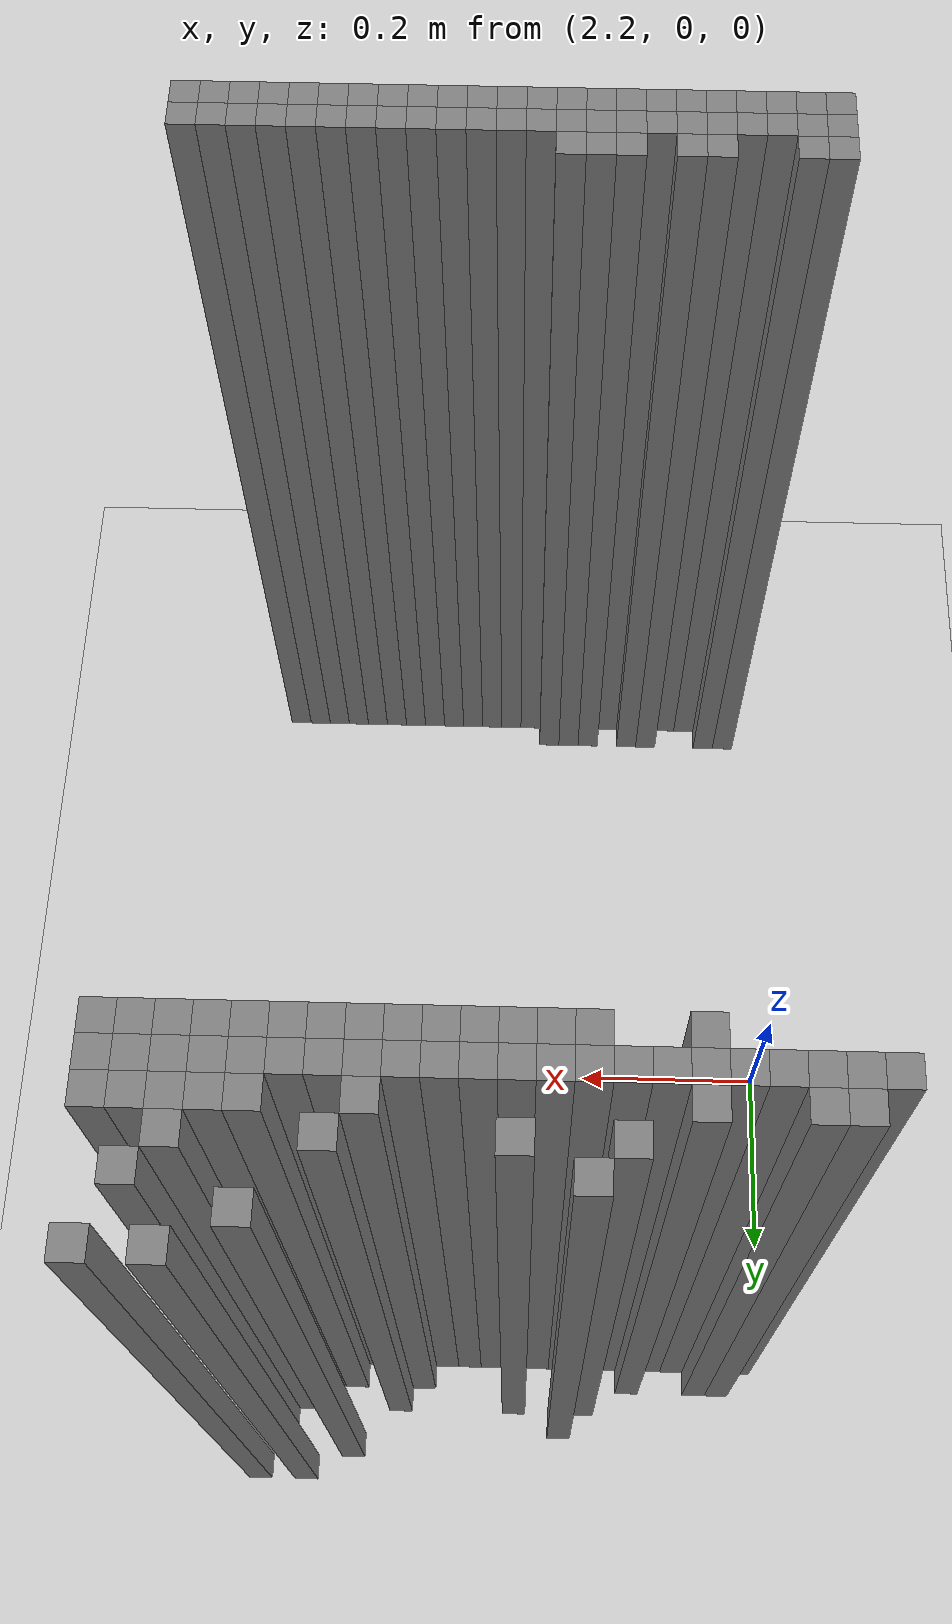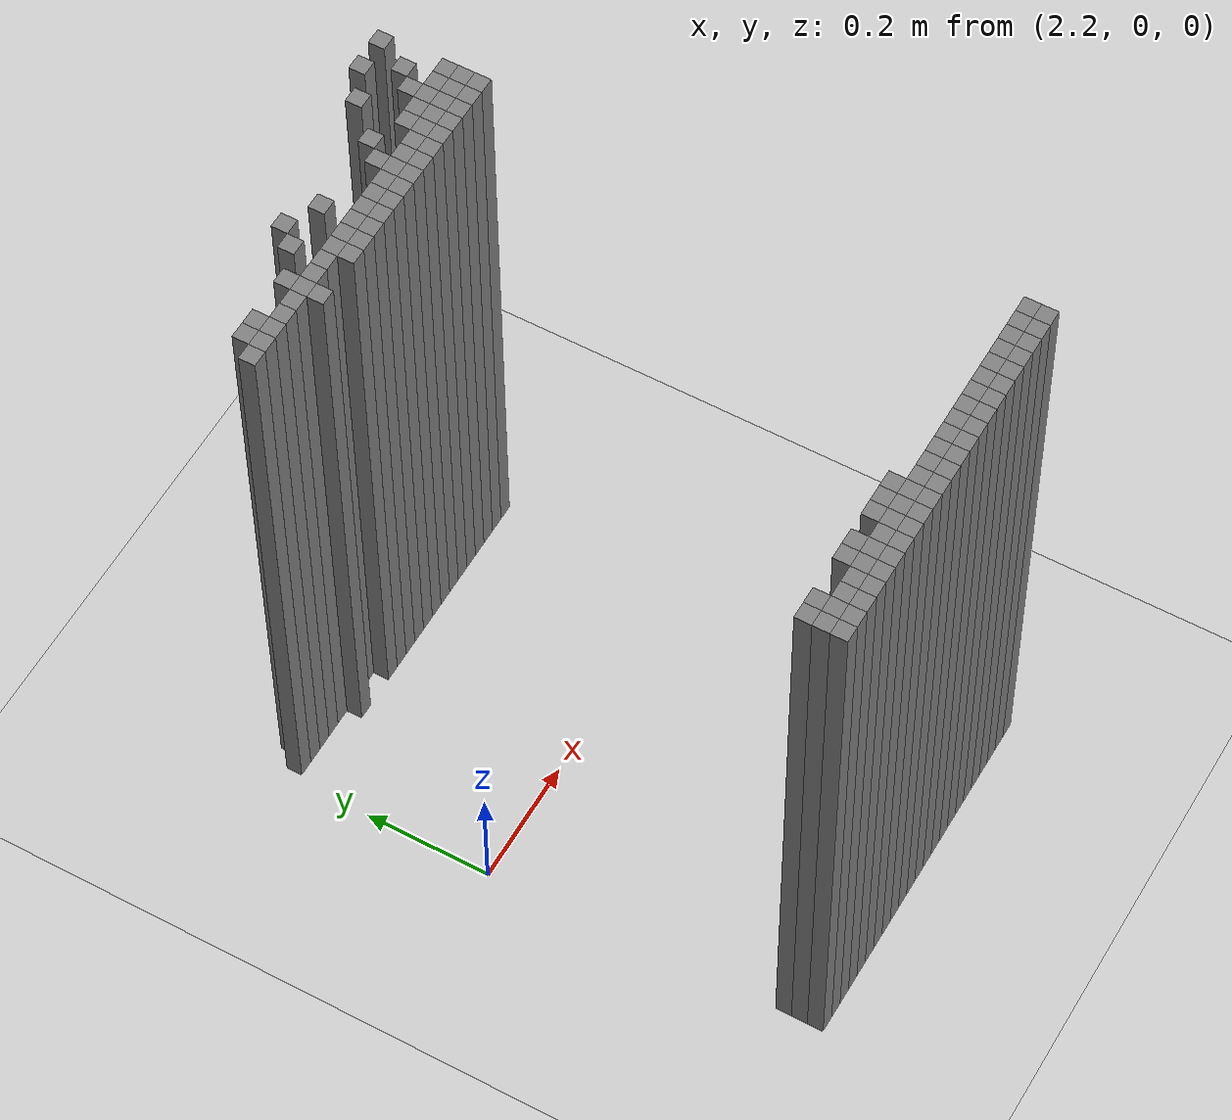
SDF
<sdf version="1.6">
 <world name="map_world">
  <include><uri>model://ground_plane</uri></include>
  <include><uri>model://sun</uri></include>
  <model name="obs_201_31">
   <static>true</static>
   <link name="link">
    <collision name="collision"><geometry><box><size>0.025 0.025 1.0</size></box></geometry></collision>
    <visual name="visual">
     <geometry><box><size>0.025 0.025 1.0</size></box></geometry>
     <material><ambient>0.5 0.5 0.5 1</ambient></material>
    </visual>
   </link>
   <pose>2.6987650000000003 0.45592900000000025 0.5 0 0 0</pose>
  </model>
  <model name="obs_203_31">
   <static>true</static>
   <link name="link">
    <collision name="collision"><geometry><box><size>0.025 0.025 1.0</size></box></geometry></collision>
    <visual name="visual">
     <geometry><box><size>0.025 0.025 1.0</size></box></geometry>
     <material><ambient>0.5 0.5 0.5 1</ambient></material>
    </visual>
   </link>
   <pose>2.748765 0.45592900000000025 0.5 0 0 0</pose>
  </model>
  <model name="obs_199_32">
   <static>true</static>
   <link name="link">
    <collision name="collision"><geometry><box><size>0.025 0.025 1.0</size></box></geometry></collision>
    <visual name="visual">
     <geometry><box><size>0.025 0.025 1.0</size></box></geometry>
     <material><ambient>0.5 0.5 0.5 1</ambient></material>
    </visual>
   </link>
   <pose>2.6487650000000005 0.43092900000000034 0.5 0 0 0</pose>
  </model>
  <model name="obs_190_33">
   <static>true</static>
   <link name="link">
    <collision name="collision"><geometry><box><size>0.025 0.025 1.0</size></box></geometry></collision>
    <visual name="visual">
     <geometry><box><size>0.025 0.025 1.0</size></box></geometry>
     <material><ambient>0.5 0.5 0.5 1</ambient></material>
    </visual>
   </link>
   <pose>2.423765 0.40592900000000043 0.5 0 0 0</pose>
  </model>
  <model name="obs_202_33">
   <static>true</static>
   <link name="link">
    <collision name="collision"><geometry><box><size>0.025 0.025 1.0</size></box></geometry></collision>
    <visual name="visual">
     <geometry><box><size>0.025 0.025 1.0</size></box></geometry>
     <material><ambient>0.5 0.5 0.5 1</ambient></material>
    </visual>
   </link>
   <pose>2.7237650000000007 0.40592900000000043 0.5 0 0 0</pose>
  </model>
  <model name="obs_189_34">
   <static>true</static>
   <link name="link">
    <collision name="collision"><geometry><box><size>0.025 0.025 1.0</size></box></geometry></collision>
    <visual name="visual">
     <geometry><box><size>0.025 0.025 1.0</size></box></geometry>
     <material><ambient>0.5 0.5 0.5 1</ambient></material>
    </visual>
   </link>
   <pose>2.3987650000000005 0.3809290000000001 0.5 0 0 0</pose>
  </model>
  <model name="obs_192_34">
   <static>true</static>
   <link name="link">
    <collision name="collision"><geometry><box><size>0.025 0.025 1.0</size></box></geometry></collision>
    <visual name="visual">
     <geometry><box><size>0.025 0.025 1.0</size></box></geometry>
     <material><ambient>0.5 0.5 0.5 1</ambient></material>
    </visual>
   </link>
   <pose>2.4737650000000007 0.3809290000000001 0.5 0 0 0</pose>
  </model>
  <model name="obs_197_34">
   <static>true</static>
   <link name="link">
    <collision name="collision"><geometry><box><size>0.025 0.025 1.0</size></box></geometry></collision>
    <visual name="visual">
     <geometry><box><size>0.025 0.025 1.0</size></box></geometry>
     <material><ambient>0.5 0.5 0.5 1</ambient></material>
    </visual>
   </link>
   <pose>2.5987650000000007 0.3809290000000001 0.5 0 0 0</pose>
  </model>
  <model name="obs_201_34">
   <static>true</static>
   <link name="link">
    <collision name="collision"><geometry><box><size>0.025 0.025 1.0</size></box></geometry></collision>
    <visual name="visual">
     <geometry><box><size>0.025 0.025 1.0</size></box></geometry>
     <material><ambient>0.5 0.5 0.5 1</ambient></material>
    </visual>
   </link>
   <pose>2.6987650000000003 0.3809290000000001 0.5 0 0 0</pose>
  </model>
  <model name="obs_183_35">
   <static>true</static>
   <link name="link">
    <collision name="collision"><geometry><box><size>0.025 0.025 1.0</size></box></geometry></collision>
    <visual name="visual">
     <geometry><box><size>0.025 0.025 1.0</size></box></geometry>
     <material><ambient>0.5 0.5 0.5 1</ambient></material>
    </visual>
   </link>
   <pose>2.248765 0.35592900000000016 0.5 0 0 0</pose>
  </model>
  <model name="obs_184_35">
   <static>true</static>
   <link name="link">
    <collision name="collision"><geometry><box><size>0.025 0.025 1.0</size></box></geometry></collision>
    <visual name="visual">
     <geometry><box><size>0.025 0.025 1.0</size></box></geometry>
     <material><ambient>0.5 0.5 0.5 1</ambient></material>
    </visual>
   </link>
   <pose>2.2737650000000005 0.35592900000000016 0.5 0 0 0</pose>
  </model>
  <model name="obs_187_35">
   <static>true</static>
   <link name="link">
    <collision name="collision"><geometry><box><size>0.025 0.025 1.0</size></box></geometry></collision>
    <visual name="visual">
     <geometry><box><size>0.025 0.025 1.0</size></box></geometry>
     <material><ambient>0.5 0.5 0.5 1</ambient></material>
    </visual>
   </link>
   <pose>2.3487649999999998 0.35592900000000016 0.5 0 0 0</pose>
  </model>
  <model name="obs_196_35">
   <static>true</static>
   <link name="link">
    <collision name="collision"><geometry><box><size>0.025 0.025 1.0</size></box></geometry></collision>
    <visual name="visual">
     <geometry><box><size>0.025 0.025 1.0</size></box></geometry>
     <material><ambient>0.5 0.5 0.5 1</ambient></material>
    </visual>
   </link>
   <pose>2.5737650000000003 0.35592900000000016 0.5 0 0 0</pose>
  </model>
  <model name="obs_199_35">
   <static>true</static>
   <link name="link">
    <collision name="collision"><geometry><box><size>0.025 0.025 1.0</size></box></geometry></collision>
    <visual name="visual">
     <geometry><box><size>0.025 0.025 1.0</size></box></geometry>
     <material><ambient>0.5 0.5 0.5 1</ambient></material>
    </visual>
   </link>
   <pose>2.6487650000000005 0.35592900000000016 0.5 0 0 0</pose>
  </model>
  <model name="obs_200_35">
   <static>true</static>
   <link name="link">
    <collision name="collision"><geometry><box><size>0.025 0.025 1.0</size></box></geometry></collision>
    <visual name="visual">
     <geometry><box><size>0.025 0.025 1.0</size></box></geometry>
     <material><ambient>0.5 0.5 0.5 1</ambient></material>
    </visual>
   </link>
   <pose>2.673765 0.35592900000000016 0.5 0 0 0</pose>
  </model>
  <model name="obs_201_35">
   <static>true</static>
   <link name="link">
    <collision name="collision"><geometry><box><size>0.025 0.025 1.0</size></box></geometry></collision>
    <visual name="visual">
     <geometry><box><size>0.025 0.025 1.0</size></box></geometry>
     <material><ambient>0.5 0.5 0.5 1</ambient></material>
    </visual>
   </link>
   <pose>2.6987650000000003 0.35592900000000016 0.5 0 0 0</pose>
  </model>
  <model name="obs_202_35">
   <static>true</static>
   <link name="link">
    <collision name="collision"><geometry><box><size>0.025 0.025 1.0</size></box></geometry></collision>
    <visual name="visual">
     <geometry><box><size>0.025 0.025 1.0</size></box></geometry>
     <material><ambient>0.5 0.5 0.5 1</ambient></material>
    </visual>
   </link>
   <pose>2.7237650000000007 0.35592900000000016 0.5 0 0 0</pose>
  </model>
  <model name="obs_203_35">
   <static>true</static>
   <link name="link">
    <collision name="collision"><geometry><box><size>0.025 0.025 1.0</size></box></geometry></collision>
    <visual name="visual">
     <geometry><box><size>0.025 0.025 1.0</size></box></geometry>
     <material><ambient>0.5 0.5 0.5 1</ambient></material>
    </visual>
   </link>
   <pose>2.748765 0.35592900000000016 0.5 0 0 0</pose>
  </model>
  <model name="obs_182_36">
   <static>true</static>
   <link name="link">
    <collision name="collision"><geometry><box><size>0.025 0.025 1.0</size></box></geometry></collision>
    <visual name="visual">
     <geometry><box><size>0.025 0.025 1.0</size></box></geometry>
     <material><ambient>0.5 0.5 0.5 1</ambient></material>
    </visual>
   </link>
   <pose>2.2237649999999998 0.33092900000000025 0.5 0 0 0</pose>
  </model>
  <model name="obs_183_36">
   <static>true</static>
   <link name="link">
    <collision name="collision"><geometry><box><size>0.025 0.025 1.0</size></box></geometry></collision>
    <visual name="visual">
     <geometry><box><size>0.025 0.025 1.0</size></box></geometry>
     <material><ambient>0.5 0.5 0.5 1</ambient></material>
    </visual>
   </link>
   <pose>2.248765 0.33092900000000025 0.5 0 0 0</pose>
  </model>
  <model name="obs_184_36">
   <static>true</static>
   <link name="link">
    <collision name="collision"><geometry><box><size>0.025 0.025 1.0</size></box></geometry></collision>
    <visual name="visual">
     <geometry><box><size>0.025 0.025 1.0</size></box></geometry>
     <material><ambient>0.5 0.5 0.5 1</ambient></material>
    </visual>
   </link>
   <pose>2.2737650000000005 0.33092900000000025 0.5 0 0 0</pose>
  </model>
  <model name="obs_185_36">
   <static>true</static>
   <link name="link">
    <collision name="collision"><geometry><box><size>0.025 0.025 1.0</size></box></geometry></collision>
    <visual name="visual">
     <geometry><box><size>0.025 0.025 1.0</size></box></geometry>
     <material><ambient>0.5 0.5 0.5 1</ambient></material>
    </visual>
   </link>
   <pose>2.298765 0.33092900000000025 0.5 0 0 0</pose>
  </model>
  <model name="obs_186_36">
   <static>true</static>
   <link name="link">
    <collision name="collision"><geometry><box><size>0.025 0.025 1.0</size></box></geometry></collision>
    <visual name="visual">
     <geometry><box><size>0.025 0.025 1.0</size></box></geometry>
     <material><ambient>0.5 0.5 0.5 1</ambient></material>
    </visual>
   </link>
   <pose>2.3237650000000003 0.33092900000000025 0.5 0 0 0</pose>
  </model>
  <model name="obs_187_36">
   <static>true</static>
   <link name="link">
    <collision name="collision"><geometry><box><size>0.025 0.025 1.0</size></box></geometry></collision>
    <visual name="visual">
     <geometry><box><size>0.025 0.025 1.0</size></box></geometry>
     <material><ambient>0.5 0.5 0.5 1</ambient></material>
    </visual>
   </link>
   <pose>2.3487649999999998 0.33092900000000025 0.5 0 0 0</pose>
  </model>
  <model name="obs_188_36">
   <static>true</static>
   <link name="link">
    <collision name="collision"><geometry><box><size>0.025 0.025 1.0</size></box></geometry></collision>
    <visual name="visual">
     <geometry><box><size>0.025 0.025 1.0</size></box></geometry>
     <material><ambient>0.5 0.5 0.5 1</ambient></material>
    </visual>
   </link>
   <pose>2.373765 0.33092900000000025 0.5 0 0 0</pose>
  </model>
  <model name="obs_189_36">
   <static>true</static>
   <link name="link">
    <collision name="collision"><geometry><box><size>0.025 0.025 1.0</size></box></geometry></collision>
    <visual name="visual">
     <geometry><box><size>0.025 0.025 1.0</size></box></geometry>
     <material><ambient>0.5 0.5 0.5 1</ambient></material>
    </visual>
   </link>
   <pose>2.3987650000000005 0.33092900000000025 0.5 0 0 0</pose>
  </model>
  <model name="obs_190_36">
   <static>true</static>
   <link name="link">
    <collision name="collision"><geometry><box><size>0.025 0.025 1.0</size></box></geometry></collision>
    <visual name="visual">
     <geometry><box><size>0.025 0.025 1.0</size></box></geometry>
     <material><ambient>0.5 0.5 0.5 1</ambient></material>
    </visual>
   </link>
   <pose>2.423765 0.33092900000000025 0.5 0 0 0</pose>
  </model>
  <model name="obs_191_36">
   <static>true</static>
   <link name="link">
    <collision name="collision"><geometry><box><size>0.025 0.025 1.0</size></box></geometry></collision>
    <visual name="visual">
     <geometry><box><size>0.025 0.025 1.0</size></box></geometry>
     <material><ambient>0.5 0.5 0.5 1</ambient></material>
    </visual>
   </link>
   <pose>2.4487650000000003 0.33092900000000025 0.5 0 0 0</pose>
  </model>
  <model name="obs_192_36">
   <static>true</static>
   <link name="link">
    <collision name="collision"><geometry><box><size>0.025 0.025 1.0</size></box></geometry></collision>
    <visual name="visual">
     <geometry><box><size>0.025 0.025 1.0</size></box></geometry>
     <material><ambient>0.5 0.5 0.5 1</ambient></material>
    </visual>
   </link>
   <pose>2.4737650000000007 0.33092900000000025 0.5 0 0 0</pose>
  </model>
  <model name="obs_193_36">
   <static>true</static>
   <link name="link">
    <collision name="collision"><geometry><box><size>0.025 0.025 1.0</size></box></geometry></collision>
    <visual name="visual">
     <geometry><box><size>0.025 0.025 1.0</size></box></geometry>
     <material><ambient>0.5 0.5 0.5 1</ambient></material>
    </visual>
   </link>
   <pose>2.498765 0.33092900000000025 0.5 0 0 0</pose>
  </model>
  <model name="obs_194_36">
   <static>true</static>
   <link name="link">
    <collision name="collision"><geometry><box><size>0.025 0.025 1.0</size></box></geometry></collision>
    <visual name="visual">
     <geometry><box><size>0.025 0.025 1.0</size></box></geometry>
     <material><ambient>0.5 0.5 0.5 1</ambient></material>
    </visual>
   </link>
   <pose>2.5237650000000005 0.33092900000000025 0.5 0 0 0</pose>
  </model>
  <model name="obs_195_36">
   <static>true</static>
   <link name="link">
    <collision name="collision"><geometry><box><size>0.025 0.025 1.0</size></box></geometry></collision>
    <visual name="visual">
     <geometry><box><size>0.025 0.025 1.0</size></box></geometry>
     <material><ambient>0.5 0.5 0.5 1</ambient></material>
    </visual>
   </link>
   <pose>2.548765 0.33092900000000025 0.5 0 0 0</pose>
  </model>
  <model name="obs_196_36">
   <static>true</static>
   <link name="link">
    <collision name="collision"><geometry><box><size>0.025 0.025 1.0</size></box></geometry></collision>
    <visual name="visual">
     <geometry><box><size>0.025 0.025 1.0</size></box></geometry>
     <material><ambient>0.5 0.5 0.5 1</ambient></material>
    </visual>
   </link>
   <pose>2.5737650000000003 0.33092900000000025 0.5 0 0 0</pose>
  </model>
  <model name="obs_197_36">
   <static>true</static>
   <link name="link">
    <collision name="collision"><geometry><box><size>0.025 0.025 1.0</size></box></geometry></collision>
    <visual name="visual">
     <geometry><box><size>0.025 0.025 1.0</size></box></geometry>
     <material><ambient>0.5 0.5 0.5 1</ambient></material>
    </visual>
   </link>
   <pose>2.5987650000000007 0.33092900000000025 0.5 0 0 0</pose>
  </model>
  <model name="obs_198_36">
   <static>true</static>
   <link name="link">
    <collision name="collision"><geometry><box><size>0.025 0.025 1.0</size></box></geometry></collision>
    <visual name="visual">
     <geometry><box><size>0.025 0.025 1.0</size></box></geometry>
     <material><ambient>0.5 0.5 0.5 1</ambient></material>
    </visual>
   </link>
   <pose>2.623765 0.33092900000000025 0.5 0 0 0</pose>
  </model>
  <model name="obs_199_36">
   <static>true</static>
   <link name="link">
    <collision name="collision"><geometry><box><size>0.025 0.025 1.0</size></box></geometry></collision>
    <visual name="visual">
     <geometry><box><size>0.025 0.025 1.0</size></box></geometry>
     <material><ambient>0.5 0.5 0.5 1</ambient></material>
    </visual>
   </link>
   <pose>2.6487650000000005 0.33092900000000025 0.5 0 0 0</pose>
  </model>
  <model name="obs_200_36">
   <static>true</static>
   <link name="link">
    <collision name="collision"><geometry><box><size>0.025 0.025 1.0</size></box></geometry></collision>
    <visual name="visual">
     <geometry><box><size>0.025 0.025 1.0</size></box></geometry>
     <material><ambient>0.5 0.5 0.5 1</ambient></material>
    </visual>
   </link>
   <pose>2.673765 0.33092900000000025 0.5 0 0 0</pose>
  </model>
  <model name="obs_201_36">
   <static>true</static>
   <link name="link">
    <collision name="collision"><geometry><box><size>0.025 0.025 1.0</size></box></geometry></collision>
    <visual name="visual">
     <geometry><box><size>0.025 0.025 1.0</size></box></geometry>
     <material><ambient>0.5 0.5 0.5 1</ambient></material>
    </visual>
   </link>
   <pose>2.6987650000000003 0.33092900000000025 0.5 0 0 0</pose>
  </model>
  <model name="obs_202_36">
   <static>true</static>
   <link name="link">
    <collision name="collision"><geometry><box><size>0.025 0.025 1.0</size></box></geometry></collision>
    <visual name="visual">
     <geometry><box><size>0.025 0.025 1.0</size></box></geometry>
     <material><ambient>0.5 0.5 0.5 1</ambient></material>
    </visual>
   </link>
   <pose>2.7237650000000007 0.33092900000000025 0.5 0 0 0</pose>
  </model>
  <model name="obs_203_36">
   <static>true</static>
   <link name="link">
    <collision name="collision"><geometry><box><size>0.025 0.025 1.0</size></box></geometry></collision>
    <visual name="visual">
     <geometry><box><size>0.025 0.025 1.0</size></box></geometry>
     <material><ambient>0.5 0.5 0.5 1</ambient></material>
    </visual>
   </link>
   <pose>2.748765 0.33092900000000025 0.5 0 0 0</pose>
  </model>
  <model name="obs_187_37">
   <static>true</static>
   <link name="link">
    <collision name="collision"><geometry><box><size>0.025 0.025 1.0</size></box></geometry></collision>
    <visual name="visual">
     <geometry><box><size>0.025 0.025 1.0</size></box></geometry>
     <material><ambient>0.5 0.5 0.5 1</ambient></material>
    </visual>
   </link>
   <pose>2.3487649999999998 0.30592900000000034 0.5 0 0 0</pose>
  </model>
  <model name="obs_190_37">
   <static>true</static>
   <link name="link">
    <collision name="collision"><geometry><box><size>0.025 0.025 1.0</size></box></geometry></collision>
    <visual name="visual">
     <geometry><box><size>0.025 0.025 1.0</size></box></geometry>
     <material><ambient>0.5 0.5 0.5 1</ambient></material>
    </visual>
   </link>
   <pose>2.423765 0.30592900000000034 0.5 0 0 0</pose>
  </model>
  <model name="obs_191_37">
   <static>true</static>
   <link name="link">
    <collision name="collision"><geometry><box><size>0.025 0.025 1.0</size></box></geometry></collision>
    <visual name="visual">
     <geometry><box><size>0.025 0.025 1.0</size></box></geometry>
     <material><ambient>0.5 0.5 0.5 1</ambient></material>
    </visual>
   </link>
   <pose>2.4487650000000003 0.30592900000000034 0.5 0 0 0</pose>
  </model>
  <model name="obs_192_37">
   <static>true</static>
   <link name="link">
    <collision name="collision"><geometry><box><size>0.025 0.025 1.0</size></box></geometry></collision>
    <visual name="visual">
     <geometry><box><size>0.025 0.025 1.0</size></box></geometry>
     <material><ambient>0.5 0.5 0.5 1</ambient></material>
    </visual>
   </link>
   <pose>2.4737650000000007 0.30592900000000034 0.5 0 0 0</pose>
  </model>
  <model name="obs_193_37">
   <static>true</static>
   <link name="link">
    <collision name="collision"><geometry><box><size>0.025 0.025 1.0</size></box></geometry></collision>
    <visual name="visual">
     <geometry><box><size>0.025 0.025 1.0</size></box></geometry>
     <material><ambient>0.5 0.5 0.5 1</ambient></material>
    </visual>
   </link>
   <pose>2.498765 0.30592900000000034 0.5 0 0 0</pose>
  </model>
  <model name="obs_194_37">
   <static>true</static>
   <link name="link">
    <collision name="collision"><geometry><box><size>0.025 0.025 1.0</size></box></geometry></collision>
    <visual name="visual">
     <geometry><box><size>0.025 0.025 1.0</size></box></geometry>
     <material><ambient>0.5 0.5 0.5 1</ambient></material>
    </visual>
   </link>
   <pose>2.5237650000000005 0.30592900000000034 0.5 0 0 0</pose>
  </model>
  <model name="obs_195_37">
   <static>true</static>
   <link name="link">
    <collision name="collision"><geometry><box><size>0.025 0.025 1.0</size></box></geometry></collision>
    <visual name="visual">
     <geometry><box><size>0.025 0.025 1.0</size></box></geometry>
     <material><ambient>0.5 0.5 0.5 1</ambient></material>
    </visual>
   </link>
   <pose>2.548765 0.30592900000000034 0.5 0 0 0</pose>
  </model>
  <model name="obs_196_37">
   <static>true</static>
   <link name="link">
    <collision name="collision"><geometry><box><size>0.025 0.025 1.0</size></box></geometry></collision>
    <visual name="visual">
     <geometry><box><size>0.025 0.025 1.0</size></box></geometry>
     <material><ambient>0.5 0.5 0.5 1</ambient></material>
    </visual>
   </link>
   <pose>2.5737650000000003 0.30592900000000034 0.5 0 0 0</pose>
  </model>
  <model name="obs_197_37">
   <static>true</static>
   <link name="link">
    <collision name="collision"><geometry><box><size>0.025 0.025 1.0</size></box></geometry></collision>
    <visual name="visual">
     <geometry><box><size>0.025 0.025 1.0</size></box></geometry>
     <material><ambient>0.5 0.5 0.5 1</ambient></material>
    </visual>
   </link>
   <pose>2.5987650000000007 0.30592900000000034 0.5 0 0 0</pose>
  </model>
  <model name="obs_198_37">
   <static>true</static>
   <link name="link">
    <collision name="collision"><geometry><box><size>0.025 0.025 1.0</size></box></geometry></collision>
    <visual name="visual">
     <geometry><box><size>0.025 0.025 1.0</size></box></geometry>
     <material><ambient>0.5 0.5 0.5 1</ambient></material>
    </visual>
   </link>
   <pose>2.623765 0.30592900000000034 0.5 0 0 0</pose>
  </model>
  <model name="obs_199_37">
   <static>true</static>
   <link name="link">
    <collision name="collision"><geometry><box><size>0.025 0.025 1.0</size></box></geometry></collision>
    <visual name="visual">
     <geometry><box><size>0.025 0.025 1.0</size></box></geometry>
     <material><ambient>0.5 0.5 0.5 1</ambient></material>
    </visual>
   </link>
   <pose>2.6487650000000005 0.30592900000000034 0.5 0 0 0</pose>
  </model>
  <model name="obs_200_37">
   <static>true</static>
   <link name="link">
    <collision name="collision"><geometry><box><size>0.025 0.025 1.0</size></box></geometry></collision>
    <visual name="visual">
     <geometry><box><size>0.025 0.025 1.0</size></box></geometry>
     <material><ambient>0.5 0.5 0.5 1</ambient></material>
    </visual>
   </link>
   <pose>2.673765 0.30592900000000034 0.5 0 0 0</pose>
  </model>
  <model name="obs_201_37">
   <static>true</static>
   <link name="link">
    <collision name="collision"><geometry><box><size>0.025 0.025 1.0</size></box></geometry></collision>
    <visual name="visual">
     <geometry><box><size>0.025 0.025 1.0</size></box></geometry>
     <material><ambient>0.5 0.5 0.5 1</ambient></material>
    </visual>
   </link>
   <pose>2.6987650000000003 0.30592900000000034 0.5 0 0 0</pose>
  </model>
  <model name="obs_202_37">
   <static>true</static>
   <link name="link">
    <collision name="collision"><geometry><box><size>0.025 0.025 1.0</size></box></geometry></collision>
    <visual name="visual">
     <geometry><box><size>0.025 0.025 1.0</size></box></geometry>
     <material><ambient>0.5 0.5 0.5 1</ambient></material>
    </visual>
   </link>
   <pose>2.7237650000000007 0.30592900000000034 0.5 0 0 0</pose>
  </model>
  <model name="obs_203_37">
   <static>true</static>
   <link name="link">
    <collision name="collision"><geometry><box><size>0.025 0.025 1.0</size></box></geometry></collision>
    <visual name="visual">
     <geometry><box><size>0.025 0.025 1.0</size></box></geometry>
     <material><ambient>0.5 0.5 0.5 1</ambient></material>
    </visual>
   </link>
   <pose>2.748765 0.30592900000000034 0.5 0 0 0</pose>
  </model>
  <model name="obs_182_68">
   <static>true</static>
   <link name="link">
    <collision name="collision"><geometry><box><size>0.025 0.025 1.0</size></box></geometry></collision>
    <visual name="visual">
     <geometry><box><size>0.025 0.025 1.0</size></box></geometry>
     <material><ambient>0.5 0.5 0.5 1</ambient></material>
    </visual>
   </link>
   <pose>2.2237649999999998 -0.4690709999999998 0.5 0 0 0</pose>
  </model>
  <model name="obs_183_68">
   <static>true</static>
   <link name="link">
    <collision name="collision"><geometry><box><size>0.025 0.025 1.0</size></box></geometry></collision>
    <visual name="visual">
     <geometry><box><size>0.025 0.025 1.0</size></box></geometry>
     <material><ambient>0.5 0.5 0.5 1</ambient></material>
    </visual>
   </link>
   <pose>2.248765 -0.4690709999999998 0.5 0 0 0</pose>
  </model>
  <model name="obs_186_68">
   <static>true</static>
   <link name="link">
    <collision name="collision"><geometry><box><size>0.025 0.025 1.0</size></box></geometry></collision>
    <visual name="visual">
     <geometry><box><size>0.025 0.025 1.0</size></box></geometry>
     <material><ambient>0.5 0.5 0.5 1</ambient></material>
    </visual>
   </link>
   <pose>2.3237650000000003 -0.4690709999999998 0.5 0 0 0</pose>
  </model>
  <model name="obs_187_68">
   <static>true</static>
   <link name="link">
    <collision name="collision"><geometry><box><size>0.025 0.025 1.0</size></box></geometry></collision>
    <visual name="visual">
     <geometry><box><size>0.025 0.025 1.0</size></box></geometry>
     <material><ambient>0.5 0.5 0.5 1</ambient></material>
    </visual>
   </link>
   <pose>2.3487649999999998 -0.4690709999999998 0.5 0 0 0</pose>
  </model>
  <model name="obs_189_68">
   <static>true</static>
   <link name="link">
    <collision name="collision"><geometry><box><size>0.025 0.025 1.0</size></box></geometry></collision>
    <visual name="visual">
     <geometry><box><size>0.025 0.025 1.0</size></box></geometry>
     <material><ambient>0.5 0.5 0.5 1</ambient></material>
    </visual>
   </link>
   <pose>2.3987650000000005 -0.4690709999999998 0.5 0 0 0</pose>
  </model>
  <model name="obs_190_68">
   <static>true</static>
   <link name="link">
    <collision name="collision"><geometry><box><size>0.025 0.025 1.0</size></box></geometry></collision>
    <visual name="visual">
     <geometry><box><size>0.025 0.025 1.0</size></box></geometry>
     <material><ambient>0.5 0.5 0.5 1</ambient></material>
    </visual>
   </link>
   <pose>2.423765 -0.4690709999999998 0.5 0 0 0</pose>
  </model>
  <model name="obs_191_68">
   <static>true</static>
   <link name="link">
    <collision name="collision"><geometry><box><size>0.025 0.025 1.0</size></box></geometry></collision>
    <visual name="visual">
     <geometry><box><size>0.025 0.025 1.0</size></box></geometry>
     <material><ambient>0.5 0.5 0.5 1</ambient></material>
    </visual>
   </link>
   <pose>2.4487650000000003 -0.4690709999999998 0.5 0 0 0</pose>
  </model>
  <model name="obs_182_69">
   <static>true</static>
   <link name="link">
    <collision name="collision"><geometry><box><size>0.025 0.025 1.0</size></box></geometry></collision>
    <visual name="visual">
     <geometry><box><size>0.025 0.025 1.0</size></box></geometry>
     <material><ambient>0.5 0.5 0.5 1</ambient></material>
    </visual>
   </link>
   <pose>2.2237649999999998 -0.4940709999999999 0.5 0 0 0</pose>
  </model>
  <model name="obs_183_69">
   <static>true</static>
   <link name="link">
    <collision name="collision"><geometry><box><size>0.025 0.025 1.0</size></box></geometry></collision>
    <visual name="visual">
     <geometry><box><size>0.025 0.025 1.0</size></box></geometry>
     <material><ambient>0.5 0.5 0.5 1</ambient></material>
    </visual>
   </link>
   <pose>2.248765 -0.4940709999999999 0.5 0 0 0</pose>
  </model>
  <model name="obs_184_69">
   <static>true</static>
   <link name="link">
    <collision name="collision"><geometry><box><size>0.025 0.025 1.0</size></box></geometry></collision>
    <visual name="visual">
     <geometry><box><size>0.025 0.025 1.0</size></box></geometry>
     <material><ambient>0.5 0.5 0.5 1</ambient></material>
    </visual>
   </link>
   <pose>2.2737650000000005 -0.4940709999999999 0.5 0 0 0</pose>
  </model>
  <model name="obs_185_69">
   <static>true</static>
   <link name="link">
    <collision name="collision"><geometry><box><size>0.025 0.025 1.0</size></box></geometry></collision>
    <visual name="visual">
     <geometry><box><size>0.025 0.025 1.0</size></box></geometry>
     <material><ambient>0.5 0.5 0.5 1</ambient></material>
    </visual>
   </link>
   <pose>2.298765 -0.4940709999999999 0.5 0 0 0</pose>
  </model>
  <model name="obs_186_69">
   <static>true</static>
   <link name="link">
    <collision name="collision"><geometry><box><size>0.025 0.025 1.0</size></box></geometry></collision>
    <visual name="visual">
     <geometry><box><size>0.025 0.025 1.0</size></box></geometry>
     <material><ambient>0.5 0.5 0.5 1</ambient></material>
    </visual>
   </link>
   <pose>2.3237650000000003 -0.4940709999999999 0.5 0 0 0</pose>
  </model>
  <model name="obs_187_69">
   <static>true</static>
   <link name="link">
    <collision name="collision"><geometry><box><size>0.025 0.025 1.0</size></box></geometry></collision>
    <visual name="visual">
     <geometry><box><size>0.025 0.025 1.0</size></box></geometry>
     <material><ambient>0.5 0.5 0.5 1</ambient></material>
    </visual>
   </link>
   <pose>2.3487649999999998 -0.4940709999999999 0.5 0 0 0</pose>
  </model>
  <model name="obs_188_69">
   <static>true</static>
   <link name="link">
    <collision name="collision"><geometry><box><size>0.025 0.025 1.0</size></box></geometry></collision>
    <visual name="visual">
     <geometry><box><size>0.025 0.025 1.0</size></box></geometry>
     <material><ambient>0.5 0.5 0.5 1</ambient></material>
    </visual>
   </link>
   <pose>2.373765 -0.4940709999999999 0.5 0 0 0</pose>
  </model>
  <model name="obs_189_69">
   <static>true</static>
   <link name="link">
    <collision name="collision"><geometry><box><size>0.025 0.025 1.0</size></box></geometry></collision>
    <visual name="visual">
     <geometry><box><size>0.025 0.025 1.0</size></box></geometry>
     <material><ambient>0.5 0.5 0.5 1</ambient></material>
    </visual>
   </link>
   <pose>2.3987650000000005 -0.4940709999999999 0.5 0 0 0</pose>
  </model>
  <model name="obs_190_69">
   <static>true</static>
   <link name="link">
    <collision name="collision"><geometry><box><size>0.025 0.025 1.0</size></box></geometry></collision>
    <visual name="visual">
     <geometry><box><size>0.025 0.025 1.0</size></box></geometry>
     <material><ambient>0.5 0.5 0.5 1</ambient></material>
    </visual>
   </link>
   <pose>2.423765 -0.4940709999999999 0.5 0 0 0</pose>
  </model>
  <model name="obs_191_69">
   <static>true</static>
   <link name="link">
    <collision name="collision"><geometry><box><size>0.025 0.025 1.0</size></box></geometry></collision>
    <visual name="visual">
     <geometry><box><size>0.025 0.025 1.0</size></box></geometry>
     <material><ambient>0.5 0.5 0.5 1</ambient></material>
    </visual>
   </link>
   <pose>2.4487650000000003 -0.4940709999999999 0.5 0 0 0</pose>
  </model>
  <model name="obs_192_69">
   <static>true</static>
   <link name="link">
    <collision name="collision"><geometry><box><size>0.025 0.025 1.0</size></box></geometry></collision>
    <visual name="visual">
     <geometry><box><size>0.025 0.025 1.0</size></box></geometry>
     <material><ambient>0.5 0.5 0.5 1</ambient></material>
    </visual>
   </link>
   <pose>2.4737650000000007 -0.4940709999999999 0.5 0 0 0</pose>
  </model>
  <model name="obs_193_69">
   <static>true</static>
   <link name="link">
    <collision name="collision"><geometry><box><size>0.025 0.025 1.0</size></box></geometry></collision>
    <visual name="visual">
     <geometry><box><size>0.025 0.025 1.0</size></box></geometry>
     <material><ambient>0.5 0.5 0.5 1</ambient></material>
    </visual>
   </link>
   <pose>2.498765 -0.4940709999999999 0.5 0 0 0</pose>
  </model>
  <model name="obs_194_69">
   <static>true</static>
   <link name="link">
    <collision name="collision"><geometry><box><size>0.025 0.025 1.0</size></box></geometry></collision>
    <visual name="visual">
     <geometry><box><size>0.025 0.025 1.0</size></box></geometry>
     <material><ambient>0.5 0.5 0.5 1</ambient></material>
    </visual>
   </link>
   <pose>2.5237650000000005 -0.4940709999999999 0.5 0 0 0</pose>
  </model>
  <model name="obs_195_69">
   <static>true</static>
   <link name="link">
    <collision name="collision"><geometry><box><size>0.025 0.025 1.0</size></box></geometry></collision>
    <visual name="visual">
     <geometry><box><size>0.025 0.025 1.0</size></box></geometry>
     <material><ambient>0.5 0.5 0.5 1</ambient></material>
    </visual>
   </link>
   <pose>2.548765 -0.4940709999999999 0.5 0 0 0</pose>
  </model>
  <model name="obs_196_69">
   <static>true</static>
   <link name="link">
    <collision name="collision"><geometry><box><size>0.025 0.025 1.0</size></box></geometry></collision>
    <visual name="visual">
     <geometry><box><size>0.025 0.025 1.0</size></box></geometry>
     <material><ambient>0.5 0.5 0.5 1</ambient></material>
    </visual>
   </link>
   <pose>2.5737650000000003 -0.4940709999999999 0.5 0 0 0</pose>
  </model>
  <model name="obs_197_69">
   <static>true</static>
   <link name="link">
    <collision name="collision"><geometry><box><size>0.025 0.025 1.0</size></box></geometry></collision>
    <visual name="visual">
     <geometry><box><size>0.025 0.025 1.0</size></box></geometry>
     <material><ambient>0.5 0.5 0.5 1</ambient></material>
    </visual>
   </link>
   <pose>2.5987650000000007 -0.4940709999999999 0.5 0 0 0</pose>
  </model>
  <model name="obs_198_69">
   <static>true</static>
   <link name="link">
    <collision name="collision"><geometry><box><size>0.025 0.025 1.0</size></box></geometry></collision>
    <visual name="visual">
     <geometry><box><size>0.025 0.025 1.0</size></box></geometry>
     <material><ambient>0.5 0.5 0.5 1</ambient></material>
    </visual>
   </link>
   <pose>2.623765 -0.4940709999999999 0.5 0 0 0</pose>
  </model>
  <model name="obs_199_69">
   <static>true</static>
   <link name="link">
    <collision name="collision"><geometry><box><size>0.025 0.025 1.0</size></box></geometry></collision>
    <visual name="visual">
     <geometry><box><size>0.025 0.025 1.0</size></box></geometry>
     <material><ambient>0.5 0.5 0.5 1</ambient></material>
    </visual>
   </link>
   <pose>2.6487650000000005 -0.4940709999999999 0.5 0 0 0</pose>
  </model>
  <model name="obs_200_69">
   <static>true</static>
   <link name="link">
    <collision name="collision"><geometry><box><size>0.025 0.025 1.0</size></box></geometry></collision>
    <visual name="visual">
     <geometry><box><size>0.025 0.025 1.0</size></box></geometry>
     <material><ambient>0.5 0.5 0.5 1</ambient></material>
    </visual>
   </link>
   <pose>2.673765 -0.4940709999999999 0.5 0 0 0</pose>
  </model>
  <model name="obs_201_69">
   <static>true</static>
   <link name="link">
    <collision name="collision"><geometry><box><size>0.025 0.025 1.0</size></box></geometry></collision>
    <visual name="visual">
     <geometry><box><size>0.025 0.025 1.0</size></box></geometry>
     <material><ambient>0.5 0.5 0.5 1</ambient></material>
    </visual>
   </link>
   <pose>2.6987650000000003 -0.4940709999999999 0.5 0 0 0</pose>
  </model>
  <model name="obs_202_69">
   <static>true</static>
   <link name="link">
    <collision name="collision"><geometry><box><size>0.025 0.025 1.0</size></box></geometry></collision>
    <visual name="visual">
     <geometry><box><size>0.025 0.025 1.0</size></box></geometry>
     <material><ambient>0.5 0.5 0.5 1</ambient></material>
    </visual>
   </link>
   <pose>2.7237650000000007 -0.4940709999999999 0.5 0 0 0</pose>
  </model>
  <model name="obs_203_69">
   <static>true</static>
   <link name="link">
    <collision name="collision"><geometry><box><size>0.025 0.025 1.0</size></box></geometry></collision>
    <visual name="visual">
     <geometry><box><size>0.025 0.025 1.0</size></box></geometry>
     <material><ambient>0.5 0.5 0.5 1</ambient></material>
    </visual>
   </link>
   <pose>2.748765 -0.4940709999999999 0.5 0 0 0</pose>
  </model>
  <model name="obs_204_69">
   <static>true</static>
   <link name="link">
    <collision name="collision"><geometry><box><size>0.025 0.025 1.0</size></box></geometry></collision>
    <visual name="visual">
     <geometry><box><size>0.025 0.025 1.0</size></box></geometry>
     <material><ambient>0.5 0.5 0.5 1</ambient></material>
    </visual>
   </link>
   <pose>2.7737650000000005 -0.4940709999999999 0.5 0 0 0</pose>
  </model>
  <model name="obs_182_70">
   <static>true</static>
   <link name="link">
    <collision name="collision"><geometry><box><size>0.025 0.025 1.0</size></box></geometry></collision>
    <visual name="visual">
     <geometry><box><size>0.025 0.025 1.0</size></box></geometry>
     <material><ambient>0.5 0.5 0.5 1</ambient></material>
    </visual>
   </link>
   <pose>2.2237649999999998 -0.5190709999999998 0.5 0 0 0</pose>
  </model>
  <model name="obs_183_70">
   <static>true</static>
   <link name="link">
    <collision name="collision"><geometry><box><size>0.025 0.025 1.0</size></box></geometry></collision>
    <visual name="visual">
     <geometry><box><size>0.025 0.025 1.0</size></box></geometry>
     <material><ambient>0.5 0.5 0.5 1</ambient></material>
    </visual>
   </link>
   <pose>2.248765 -0.5190709999999998 0.5 0 0 0</pose>
  </model>
  <model name="obs_184_70">
   <static>true</static>
   <link name="link">
    <collision name="collision"><geometry><box><size>0.025 0.025 1.0</size></box></geometry></collision>
    <visual name="visual">
     <geometry><box><size>0.025 0.025 1.0</size></box></geometry>
     <material><ambient>0.5 0.5 0.5 1</ambient></material>
    </visual>
   </link>
   <pose>2.2737650000000005 -0.5190709999999998 0.5 0 0 0</pose>
  </model>
  <model name="obs_185_70">
   <static>true</static>
   <link name="link">
    <collision name="collision"><geometry><box><size>0.025 0.025 1.0</size></box></geometry></collision>
    <visual name="visual">
     <geometry><box><size>0.025 0.025 1.0</size></box></geometry>
     <material><ambient>0.5 0.5 0.5 1</ambient></material>
    </visual>
   </link>
   <pose>2.298765 -0.5190709999999998 0.5 0 0 0</pose>
  </model>
  <model name="obs_186_70">
   <static>true</static>
   <link name="link">
    <collision name="collision"><geometry><box><size>0.025 0.025 1.0</size></box></geometry></collision>
    <visual name="visual">
     <geometry><box><size>0.025 0.025 1.0</size></box></geometry>
     <material><ambient>0.5 0.5 0.5 1</ambient></material>
    </visual>
   </link>
   <pose>2.3237650000000003 -0.5190709999999998 0.5 0 0 0</pose>
  </model>
  <model name="obs_187_70">
   <static>true</static>
   <link name="link">
    <collision name="collision"><geometry><box><size>0.025 0.025 1.0</size></box></geometry></collision>
    <visual name="visual">
     <geometry><box><size>0.025 0.025 1.0</size></box></geometry>
     <material><ambient>0.5 0.5 0.5 1</ambient></material>
    </visual>
   </link>
   <pose>2.3487649999999998 -0.5190709999999998 0.5 0 0 0</pose>
  </model>
  <model name="obs_188_70">
   <static>true</static>
   <link name="link">
    <collision name="collision"><geometry><box><size>0.025 0.025 1.0</size></box></geometry></collision>
    <visual name="visual">
     <geometry><box><size>0.025 0.025 1.0</size></box></geometry>
     <material><ambient>0.5 0.5 0.5 1</ambient></material>
    </visual>
   </link>
   <pose>2.373765 -0.5190709999999998 0.5 0 0 0</pose>
  </model>
  <model name="obs_189_70">
   <static>true</static>
   <link name="link">
    <collision name="collision"><geometry><box><size>0.025 0.025 1.0</size></box></geometry></collision>
    <visual name="visual">
     <geometry><box><size>0.025 0.025 1.0</size></box></geometry>
     <material><ambient>0.5 0.5 0.5 1</ambient></material>
    </visual>
   </link>
   <pose>2.3987650000000005 -0.5190709999999998 0.5 0 0 0</pose>
  </model>
  <model name="obs_190_70">
   <static>true</static>
   <link name="link">
    <collision name="collision"><geometry><box><size>0.025 0.025 1.0</size></box></geometry></collision>
    <visual name="visual">
     <geometry><box><size>0.025 0.025 1.0</size></box></geometry>
     <material><ambient>0.5 0.5 0.5 1</ambient></material>
    </visual>
   </link>
   <pose>2.423765 -0.5190709999999998 0.5 0 0 0</pose>
  </model>
  <model name="obs_191_70">
   <static>true</static>
   <link name="link">
    <collision name="collision"><geometry><box><size>0.025 0.025 1.0</size></box></geometry></collision>
    <visual name="visual">
     <geometry><box><size>0.025 0.025 1.0</size></box></geometry>
     <material><ambient>0.5 0.5 0.5 1</ambient></material>
    </visual>
   </link>
   <pose>2.4487650000000003 -0.5190709999999998 0.5 0 0 0</pose>
  </model>
  <model name="obs_192_70">
   <static>true</static>
   <link name="link">
    <collision name="collision"><geometry><box><size>0.025 0.025 1.0</size></box></geometry></collision>
    <visual name="visual">
     <geometry><box><size>0.025 0.025 1.0</size></box></geometry>
     <material><ambient>0.5 0.5 0.5 1</ambient></material>
    </visual>
   </link>
   <pose>2.4737650000000007 -0.5190709999999998 0.5 0 0 0</pose>
  </model>
  <model name="obs_193_70">
   <static>true</static>
   <link name="link">
    <collision name="collision"><geometry><box><size>0.025 0.025 1.0</size></box></geometry></collision>
    <visual name="visual">
     <geometry><box><size>0.025 0.025 1.0</size></box></geometry>
     <material><ambient>0.5 0.5 0.5 1</ambient></material>
    </visual>
   </link>
   <pose>2.498765 -0.5190709999999998 0.5 0 0 0</pose>
  </model>
  <model name="obs_194_70">
   <static>true</static>
   <link name="link">
    <collision name="collision"><geometry><box><size>0.025 0.025 1.0</size></box></geometry></collision>
    <visual name="visual">
     <geometry><box><size>0.025 0.025 1.0</size></box></geometry>
     <material><ambient>0.5 0.5 0.5 1</ambient></material>
    </visual>
   </link>
   <pose>2.5237650000000005 -0.5190709999999998 0.5 0 0 0</pose>
  </model>
  <model name="obs_195_70">
   <static>true</static>
   <link name="link">
    <collision name="collision"><geometry><box><size>0.025 0.025 1.0</size></box></geometry></collision>
    <visual name="visual">
     <geometry><box><size>0.025 0.025 1.0</size></box></geometry>
     <material><ambient>0.5 0.5 0.5 1</ambient></material>
    </visual>
   </link>
   <pose>2.548765 -0.5190709999999998 0.5 0 0 0</pose>
  </model>
  <model name="obs_196_70">
   <static>true</static>
   <link name="link">
    <collision name="collision"><geometry><box><size>0.025 0.025 1.0</size></box></geometry></collision>
    <visual name="visual">
     <geometry><box><size>0.025 0.025 1.0</size></box></geometry>
     <material><ambient>0.5 0.5 0.5 1</ambient></material>
    </visual>
   </link>
   <pose>2.5737650000000003 -0.5190709999999998 0.5 0 0 0</pose>
  </model>
  <model name="obs_197_70">
   <static>true</static>
   <link name="link">
    <collision name="collision"><geometry><box><size>0.025 0.025 1.0</size></box></geometry></collision>
    <visual name="visual">
     <geometry><box><size>0.025 0.025 1.0</size></box></geometry>
     <material><ambient>0.5 0.5 0.5 1</ambient></material>
    </visual>
   </link>
   <pose>2.5987650000000007 -0.5190709999999998 0.5 0 0 0</pose>
  </model>
  <model name="obs_198_70">
   <static>true</static>
   <link name="link">
    <collision name="collision"><geometry><box><size>0.025 0.025 1.0</size></box></geometry></collision>
    <visual name="visual">
     <geometry><box><size>0.025 0.025 1.0</size></box></geometry>
     <material><ambient>0.5 0.5 0.5 1</ambient></material>
    </visual>
   </link>
   <pose>2.623765 -0.5190709999999998 0.5 0 0 0</pose>
  </model>
  <model name="obs_199_70">
   <static>true</static>
   <link name="link">
    <collision name="collision"><geometry><box><size>0.025 0.025 1.0</size></box></geometry></collision>
    <visual name="visual">
     <geometry><box><size>0.025 0.025 1.0</size></box></geometry>
     <material><ambient>0.5 0.5 0.5 1</ambient></material>
    </visual>
   </link>
   <pose>2.6487650000000005 -0.5190709999999998 0.5 0 0 0</pose>
  </model>
  <model name="obs_200_70">
   <static>true</static>
   <link name="link">
    <collision name="collision"><geometry><box><size>0.025 0.025 1.0</size></box></geometry></collision>
    <visual name="visual">
     <geometry><box><size>0.025 0.025 1.0</size></box></geometry>
     <material><ambient>0.5 0.5 0.5 1</ambient></material>
    </visual>
   </link>
   <pose>2.673765 -0.5190709999999998 0.5 0 0 0</pose>
  </model>
  <model name="obs_201_70">
   <static>true</static>
   <link name="link">
    <collision name="collision"><geometry><box><size>0.025 0.025 1.0</size></box></geometry></collision>
    <visual name="visual">
     <geometry><box><size>0.025 0.025 1.0</size></box></geometry>
     <material><ambient>0.5 0.5 0.5 1</ambient></material>
    </visual>
   </link>
   <pose>2.6987650000000003 -0.5190709999999998 0.5 0 0 0</pose>
  </model>
  <model name="obs_202_70">
   <static>true</static>
   <link name="link">
    <collision name="collision"><geometry><box><size>0.025 0.025 1.0</size></box></geometry></collision>
    <visual name="visual">
     <geometry><box><size>0.025 0.025 1.0</size></box></geometry>
     <material><ambient>0.5 0.5 0.5 1</ambient></material>
    </visual>
   </link>
   <pose>2.7237650000000007 -0.5190709999999998 0.5 0 0 0</pose>
  </model>
  <model name="obs_203_70">
   <static>true</static>
   <link name="link">
    <collision name="collision"><geometry><box><size>0.025 0.025 1.0</size></box></geometry></collision>
    <visual name="visual">
     <geometry><box><size>0.025 0.025 1.0</size></box></geometry>
     <material><ambient>0.5 0.5 0.5 1</ambient></material>
    </visual>
   </link>
   <pose>2.748765 -0.5190709999999998 0.5 0 0 0</pose>
  </model>
  <model name="obs_204_70">
   <static>true</static>
   <link name="link">
    <collision name="collision"><geometry><box><size>0.025 0.025 1.0</size></box></geometry></collision>
    <visual name="visual">
     <geometry><box><size>0.025 0.025 1.0</size></box></geometry>
     <material><ambient>0.5 0.5 0.5 1</ambient></material>
    </visual>
   </link>
   <pose>2.7737650000000005 -0.5190709999999998 0.5 0 0 0</pose>
  </model>
 </world>
</sdf>
